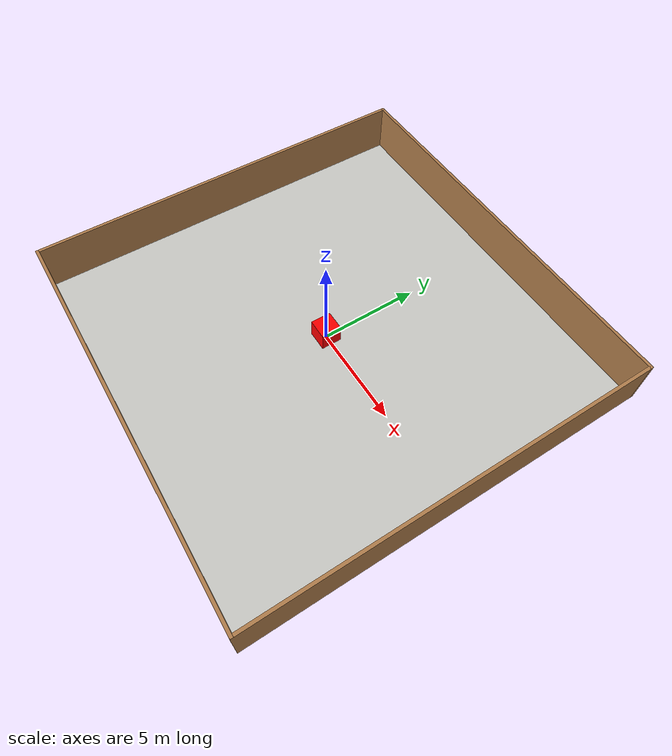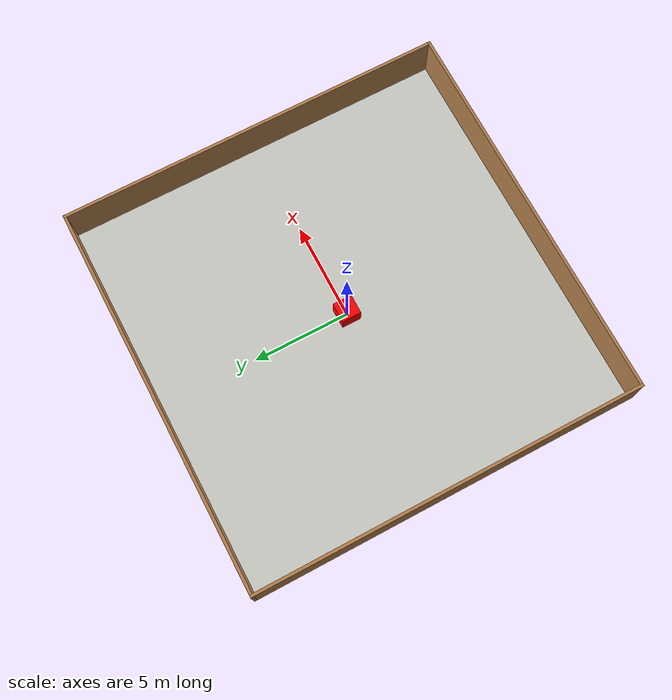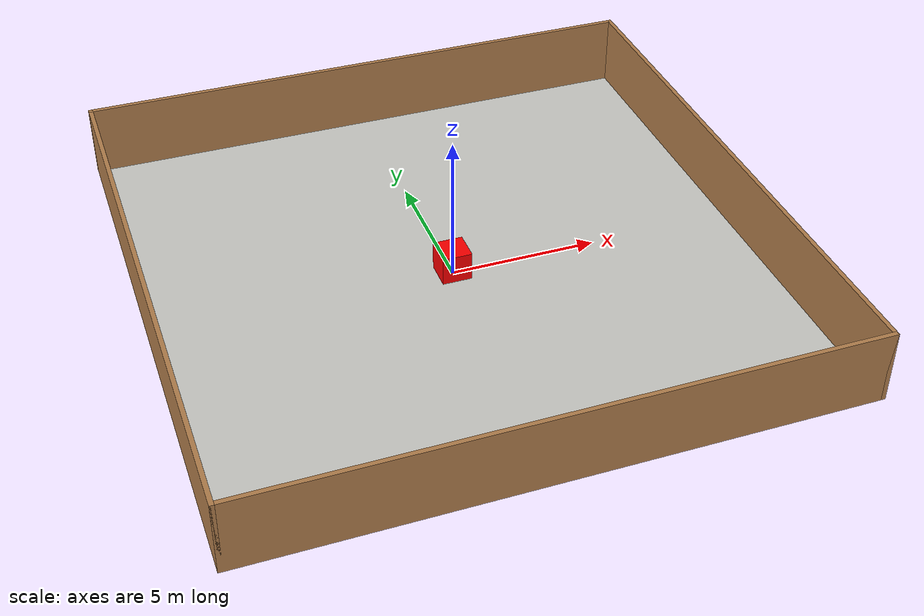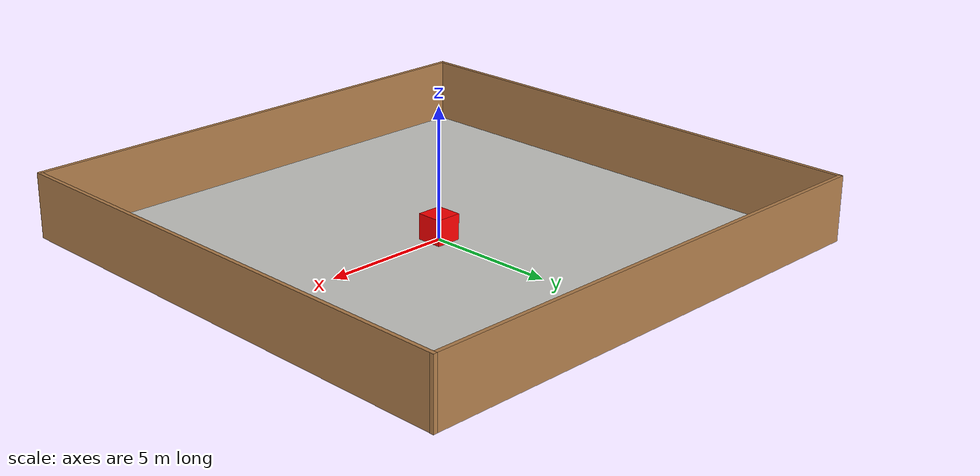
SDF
<sdf version="1.6">
 <world name="default">
  <model name="obstacle1_1.0_1.0_1.2">
   <link name="link">
    <collision name="collision"><geometry><box><size>1 1 2</size></box></geometry></collision>
    <visual name="visual">
     <geometry><box><size>1 1 2</size></box></geometry>
     <material>
      <ambient>1 0 0 1</ambient>
      <diffuse>1 0 0 1</diffuse>
      <specular>0.1 0.1 0.1 1</specular>
      <emissive>0 0 0 0</emissive>
     </material>
    </visual>
   </link>
   <plugin name="obstacle_motion" filename="libobstaclePathPlugin.so">
    <loop>1</loop>
    <velocity>0.5</velocity>
    <orientation>0</orientation>
    <path><waypoint>5.0 8.0 0.1</waypoint><waypoint>5.0 -1.0 0.1</waypoint></path>
   </plugin>
  </model>
  <model name="obstacle2_0.5_0.5_1.8">
   <link name="link">
    <collision name="collision"><geometry><box><size>0.5 0.5 1.8</size></box></geometry></collision>
    <visual name="visual">
     <geometry><box><size>0.5 0.5 1.8</size></box></geometry>
     <material>
      <ambient>1 0 0 1</ambient>
      <diffuse>0 0 1 1</diffuse>
      <specular>0.1 0.1 0.1 1</specular>
      <emissive>0 0 0 0</emissive>
     </material>
    </visual>
   </link>
   <plugin name="obstacle_motion" filename="libobstaclePathPlugin.so">
    <loop>0</loop>
    <velocity>0.5</velocity>
    <orientation>0</orientation>
    <path>
     <waypoint>-6.0 -5.0 0.1</waypoint>
     <waypoint>-3.0 -4.0 0.1</waypoint>
     <waypoint>0.0 -5.0 0.1</waypoint>
     <waypoint>3.0 -6.0 0.1</waypoint>
     <waypoint>6.0 -5.0 0.1</waypoint>
    </path>
   </plugin>
  </model>
  <model name="obstacle3_0.5_0.5_1.8">
   <link name="link">
    <collision name="collision"><geometry><box><size>0.8 0.8 1.8</size></box></geometry></collision>
    <visual name="visual">
     <geometry><box><size>0.5 0.5 1.8</size></box></geometry>
     <material>
      <ambient>1 0 0 1</ambient>
      <diffuse>0 1 0 1</diffuse>
      <specular>0.1 0.1 0.1 1</specular>
      <emissive>0 0 0 0</emissive>
     </material>
    </visual>
   </link>
   <plugin name="obstacle_motion" filename="libobstaclePathPlugin.so">
    <loop>0</loop>
    <velocity>0.5</velocity>
    <orientation>0</orientation>
    <path><waypoint>1.0 7.0 0.1</waypoint><waypoint>1.0 -2 0.1</waypoint></path>
   </plugin>
  </model>
  <model name="obstacle4_0.8_0.8_1.8">
   <link name="link">
    <collision name="collision"><geometry><box><size>0.8 0.8 1.8</size></box></geometry></collision>
    <visual name="visual">
     <pose>0 0 0 0 0 1.57</pose>
     <geometry><box><size>0.5 0.5 1.8</size></box></geometry>
     <material>
      <ambient>1 0 0 1</ambient>
      <diffuse>1 1 0 1</diffuse>
      <specular>0.1 0.1 0.1 1</specular>
      <emissive>0 0 0 0</emissive>
     </material>
    </visual>
   </link>
   <plugin name="obstacle_motion" filename="libobstaclePathPlugin.so">
    <loop>0</loop>
    <velocity>0.5</velocity>
    <orientation>0</orientation>
    <path><waypoint>-8.0 0.0 0.1</waypoint><waypoint>-2.0 0.0 0.1</waypoint></path>
   </plugin>
  </model>
  <light name="sun" type="directional">
   <cast_shadows>0</cast_shadows>
   <pose>0 0 10 0 -0 0</pose>
   <diffuse>0.8 0.8 0.8 1</diffuse>
   <specular>0.2 0.2 0.2 1</specular>
   <attenuation>
    <range>1000</range>
    <constant>0.9</constant>
    <linear>0.01</linear>
    <quadratic>0.001</quadratic>
   </attenuation>
   <direction>-0.5 0.1 -0.9</direction>
   <spot><inner_angle>0</inner_angle><outer_angle>0</outer_angle><falloff>0</falloff></spot>
  </light>
  <gravity>0 0 -9.8</gravity>
  <magnetic_field>6e-06 2.3e-05 -4.2e-05</magnetic_field>
  <atmosphere type="adiabatic"/>
  <physics type="ode">
   <max_step_size>0.002</max_step_size>
   <real_time_factor>1</real_time_factor>
   <real_time_update_rate>500</real_time_update_rate>
  </physics>
  <scene><ambient>0.4 0.4 0.4 1</ambient><background>0.7 0.7 0.7 1</background><shadows>0</shadows></scene>
  <spherical_coordinates>
   <surface_model>EARTH_WGS84</surface_model>
   <latitude_deg>0</latitude_deg>
   <longitude_deg>0</longitude_deg>
   <elevation>0</elevation>
   <heading_deg>0</heading_deg>
  </spherical_coordinates>
  <model name="square">
   <link name="Wall_0">
    <collision name="Wall_0_Collision">
     <geometry><box><size>20.15 0.15 2.5</size></box></geometry>
     <pose>0 0 1.25 0 -0 0</pose>
    </collision>
    <visual name="Wall_0_Visual">
     <pose>0 0 1.25 0 -0 0</pose>
     <geometry><box><size>20.15 0.15 2.5</size></box></geometry>
     <material>
      <script><uri>file://media/materials/scripts/gazebo.material</uri><name>Gazebo/Wood</name></script>
      <ambient>1 1 1 1</ambient>
     </material>
     <meta><layer>0</layer></meta>
    </visual>
    <pose>-10 0 0 0 -0 -1.5708</pose>
   </link>
   <link name="Wall_2">
    <collision name="Wall_2_Collision">
     <geometry><box><size>20.15 0.15 2.5</size></box></geometry>
     <pose>0 0 1.25 0 -0 0</pose>
    </collision>
    <visual name="Wall_2_Visual">
     <pose>0 0 1.25 0 -0 0</pose>
     <geometry><box><size>20.15 0.15 2.5</size></box></geometry>
     <material>
      <script><uri>file://media/materials/scripts/gazebo.material</uri><name>Gazebo/Wood</name></script>
      <ambient>1 1 1 1</ambient>
     </material>
     <meta><layer>0</layer></meta>
    </visual>
    <pose>0 -10 0 0 -0 0</pose>
   </link>
   <link name="Wall_4">
    <collision name="Wall_4_Collision">
     <geometry><box><size>20.15 0.15 2.5</size></box></geometry>
     <pose>0 0 1.25 0 -0 0</pose>
    </collision>
    <visual name="Wall_4_Visual">
     <pose>0 0 1.25 0 -0 0</pose>
     <geometry><box><size>20.15 0.15 2.5</size></box></geometry>
     <material>
      <script><uri>file://media/materials/scripts/gazebo.material</uri><name>Gazebo/Wood</name></script>
      <ambient>1 1 1 1</ambient>
     </material>
     <meta><layer>0</layer></meta>
    </visual>
    <pose>10 0 0 0 -0 1.5708</pose>
   </link>
   <link name="Wall_6">
    <collision name="Wall_6_Collision">
     <geometry><box><size>20.15 0.15 2.5</size></box></geometry>
     <pose>0 0 1.25 0 -0 0</pose>
    </collision>
    <visual name="Wall_6_Visual">
     <pose>0 0 1.25 0 -0 0</pose>
     <geometry><box><size>20.15 0.15 2.5</size></box></geometry>
     <material>
      <script><uri>file://media/materials/scripts/gazebo.material</uri><name>Gazebo/Wood</name></script>
      <ambient>1 1 1 1</ambient>
     </material>
     <meta><layer>0</layer></meta>
    </visual>
    <pose>0 10 0 0 -0 3.14159</pose>
   </link>
   <link name="Wall_8">
    <collision name="Wall_8_Collision">
     <geometry><box><size>20 20 0.01</size></box></geometry>
     <pose>0 0 0.005 0 -0 0</pose>
    </collision>
    <visual name="Wall_8_Visual">
     <pose>0 0 0.005 0 -0 0</pose>
     <geometry><box><size>20 20 0.01</size></box></geometry>
     <material>
      <script><uri>file://media/materials/scripts/gazebo.material</uri><name>Gazebo/CeilingTiled</name></script>
      <ambient>1 1 1 1</ambient>
     </material>
     <meta><layer>0</layer></meta>
    </visual>
   </link>
   <static>1</static>
  </model>
  <light name="user_directional_light_0" type="directional">
   <pose>0.042176 -0.039555 1 0 -0 0</pose>
   <diffuse>0.5 0.5 0.5 1</diffuse>
   <specular>0.1 0.1 0.1 1</specular>
   <direction>0.1 0.1 -0.9</direction>
   <attenuation>
    <range>20</range>
    <constant>0.5</constant>
    <linear>0.01</linear>
    <quadratic>0.001</quadratic>
   </attenuation>
   <cast_shadows>0</cast_shadows>
  </light>
  <light name="user_directional_light_1" type="directional">
   <pose>0.063372 5.12527 1 0 -0 0</pose>
   <diffuse>0.5 0.5 0.5 1</diffuse>
   <specular>0.1 0.1 0.1 1</specular>
   <direction>0.1 0.1 -0.9</direction>
   <attenuation>
    <range>20</range>
    <constant>0.5</constant>
    <linear>0.01</linear>
    <quadratic>0.001</quadratic>
   </attenuation>
   <cast_shadows>0</cast_shadows>
  </light>
  <light name="user_directional_light_2" type="directional">
   <pose>0.043617 -5.92166 1 0 -0 0</pose>
   <diffuse>0.5 0.5 0.5 1</diffuse>
   <specular>0.1 0.1 0.1 1</specular>
   <direction>0.1 0.1 -0.9</direction>
   <attenuation>
    <range>20</range>
    <constant>0.5</constant>
    <linear>0.01</linear>
    <quadratic>0.001</quadratic>
   </attenuation>
   <cast_shadows>0</cast_shadows>
  </light>
 </world>
</sdf>
